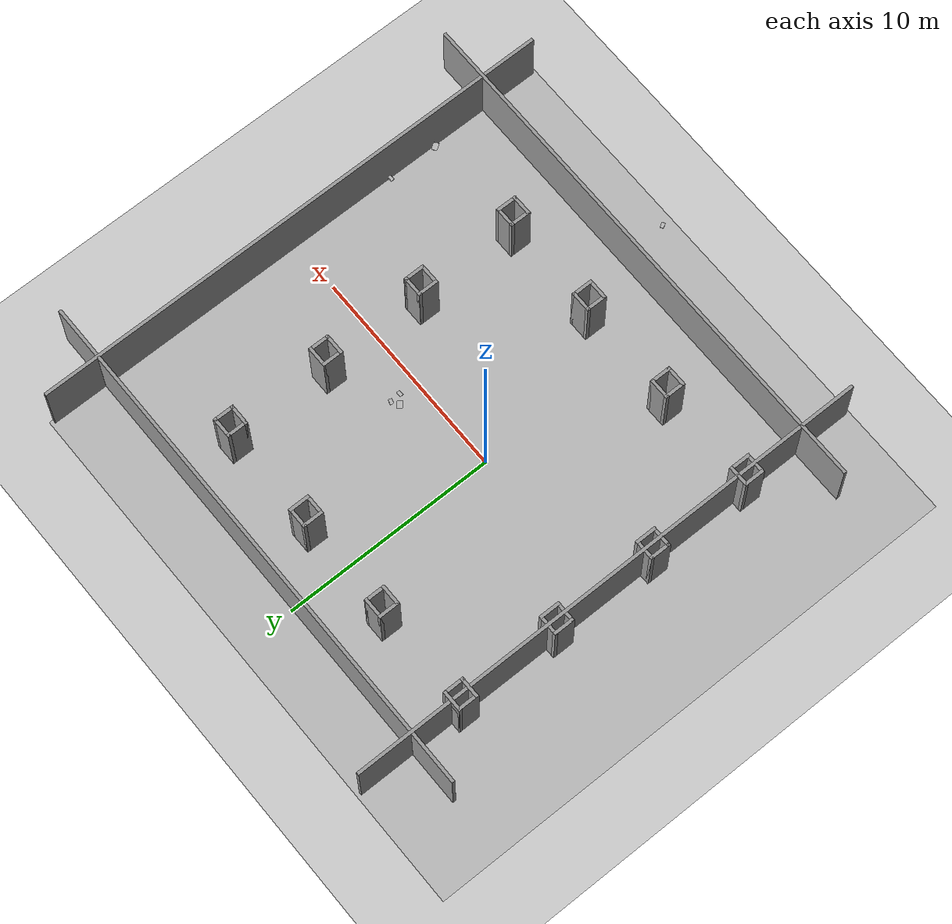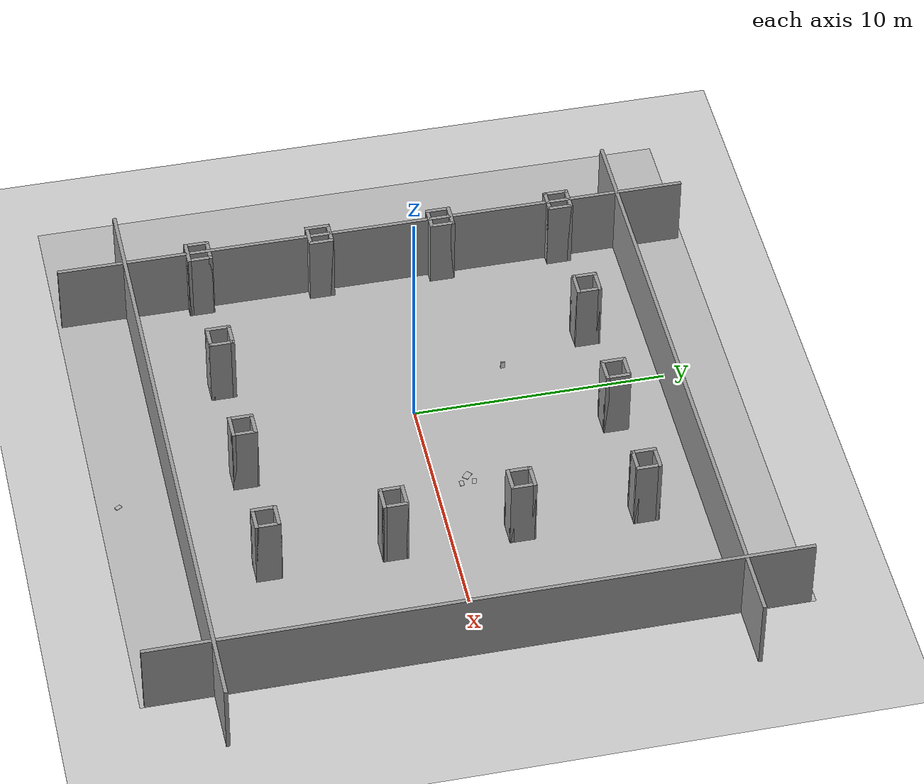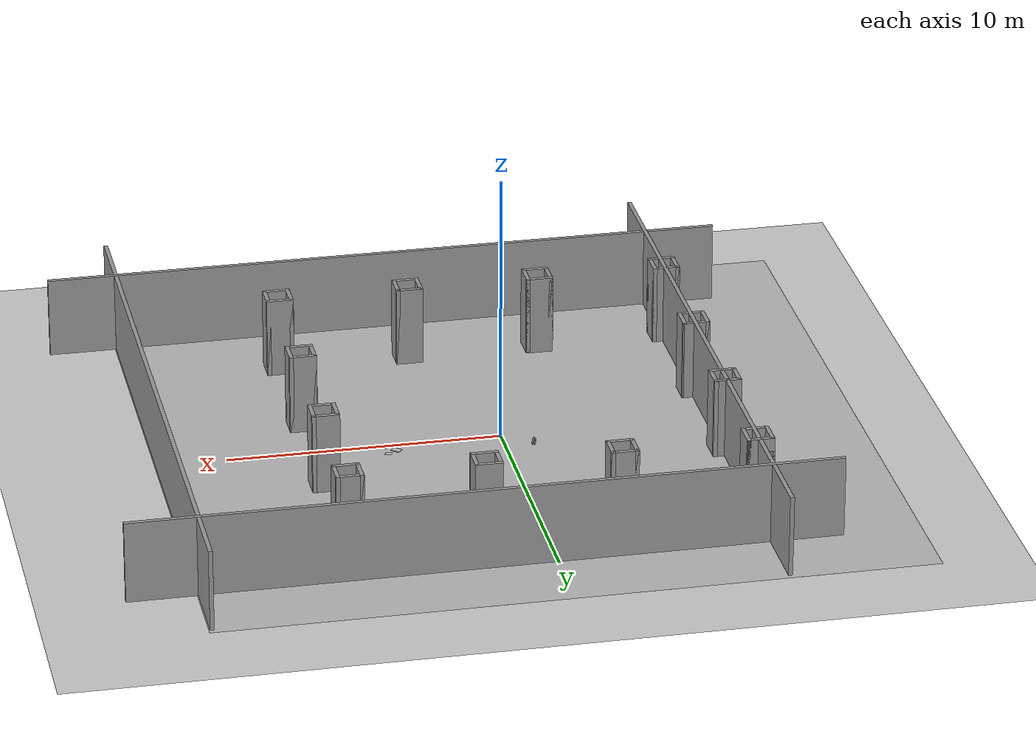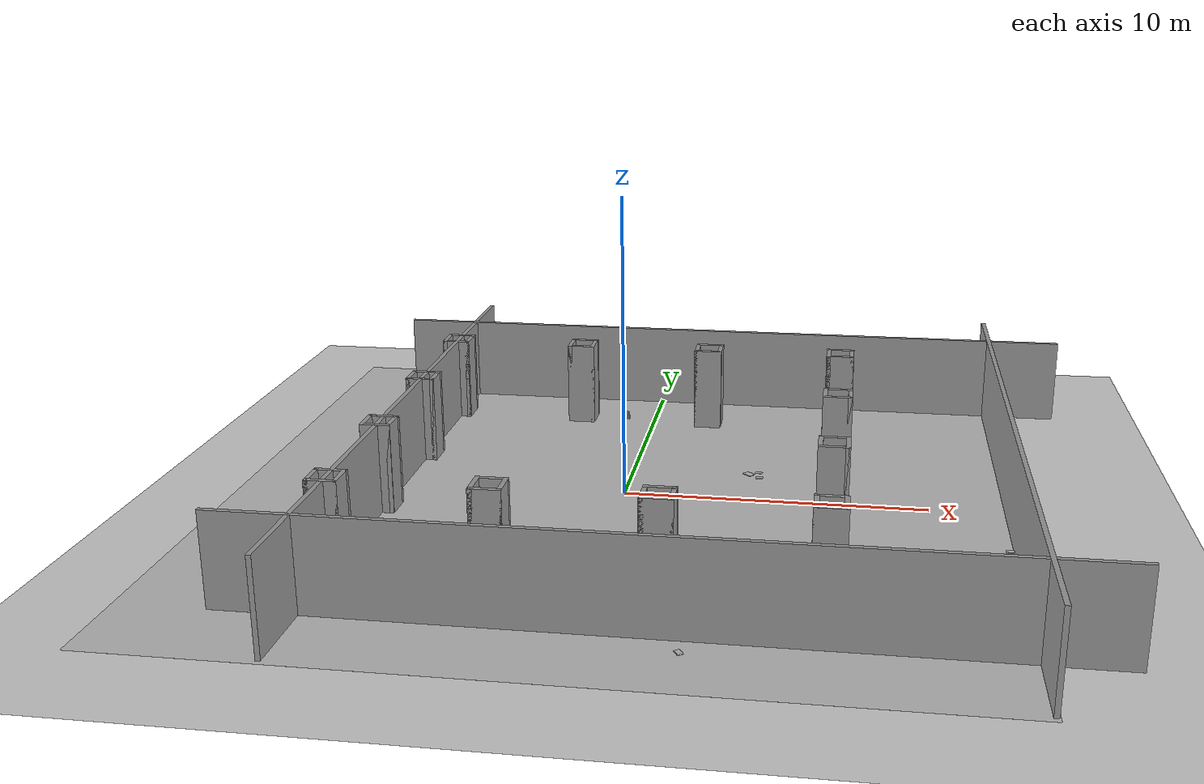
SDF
<sdf version="1.6">
 <world name="default">
  <model name="ground_plane">
   <static>1</static>
   <link name="link">
    <collision name="collision">
     <geometry><plane><normal>0 0 1</normal><size>100 100</size></plane></geometry>
     <surface><friction><ode><mu>1</mu><mu2>1</mu2></ode></friction></surface>
    </collision>
    <visual name="visual">
     <cast_shadows>0</cast_shadows>
     <geometry><plane><normal>0 0 1</normal><size>100 100</size></plane></geometry>
     <material>
      <script><uri>file://media/materials/scripts/gazebo.material</uri><name>Gazebo/Grey</name></script>
     </material>
    </visual>
    <velocity_decay><linear>0</linear><angular>0</angular></velocity_decay>
   </link>
  </model>
  <model name="book_14">
   <link name="cover">
    <pose>0 -0.000108 0.015405 0 -0 0</pose>
    <visual name="visual">
     <geometry><box><size>0.245 0.16 0.03</size></box></geometry>
     <material>
      <script>
       <uri>model://book_14/materials/scripts</uri>
       <uri>model://book_14/materials/textures</uri>
       <name>book_14</name>
      </script>
     </material>
    </visual>
    <collision name="collision"><geometry><box><size>0.245 0.16 0.03</size></box></geometry></collision>
   </link>
   <link name="page">
    <pose>0 0.000608 0.015405 0 -0 0</pose>
    <visual name="visual">
     <geometry><box><size>0.24502 0.15862 0.028</size></box></geometry>
     <material>
      <lighting>1</lighting>
      <ambient>1 1 1 1</ambient>
      <diffuse>1 1 1 1</diffuse>
      <specular>0.01 0.01 0.01 1</specular>
      <emissive>0 0 0 1</emissive>
      <shader type="vertex"><normal_map>__default__</normal_map></shader>
     </material>
    </visual>
    <collision name="collision"><geometry><box><size>0.245 0.16 0.03</size></box></geometry></collision>
   </link>
   <static>1</static>
   <pose>-0.397337 3.60071 1.53368 -3.08906 1.34097 0.077504</pose>
  </model>
  <model name="book_16">
   <link name="cover">
    <pose>0 -0.000108 0.015405 0 -0 0</pose>
    <visual name="visual">
     <geometry><box><size>0.245 0.16 0.03</size></box></geometry>
     <material>
      <script>
       <uri>model://book_16/materials/scripts</uri>
       <uri>model://book_16/materials/textures</uri>
       <name>book_16</name>
      </script>
     </material>
    </visual>
    <collision name="collision"><geometry><box><size>0.245 0.16 0.03</size></box></geometry></collision>
   </link>
   <link name="page">
    <pose>0 0.000608 0.015405 0 -0 0</pose>
    <visual name="visual">
     <geometry><box><size>0.24502 0.15862 0.028</size></box></geometry>
     <material>
      <lighting>1</lighting>
      <ambient>1 1 1 1</ambient>
      <diffuse>1 1 1 1</diffuse>
      <specular>0.01 0.01 0.01 1</specular>
      <emissive>0 0 0 1</emissive>
      <shader type="vertex"><normal_map>__default__</normal_map></shader>
     </material>
    </visual>
    <collision name="collision"><geometry><box><size>0.245 0.16 0.03</size></box></geometry></collision>
   </link>
   <static>1</static>
   <pose>4.42601 0.923836 0.431684 0 0 -3.11812</pose>
  </model>
  <model name="book_18">
   <link name="cover">
    <pose>0 -0.000108 0.015405 0 -0 0</pose>
    <visual name="visual">
     <geometry><box><size>0.245 0.16 0.03</size></box></geometry>
     <material>
      <script>
       <uri>model://book_18/materials/scripts</uri>
       <uri>model://book_18/materials/textures</uri>
       <name>book_18</name>
      </script>
     </material>
    </visual>
    <collision name="collision"><geometry><box><size>0.245 0.16 0.03</size></box></geometry></collision>
   </link>
   <link name="page">
    <pose>0 0.000608 0.015405 0 -0 0</pose>
    <visual name="visual">
     <geometry><box><size>0.24502 0.15862 0.028</size></box></geometry>
     <material>
      <lighting>1</lighting>
      <ambient>1 1 1 1</ambient>
      <diffuse>1 1 1 1</diffuse>
      <specular>0.01 0.01 0.01 1</specular>
      <emissive>0 0 0 1</emissive>
      <shader type="vertex"><normal_map>__default__</normal_map></shader>
     </material>
    </visual>
    <collision name="collision"><geometry><box><size>0.245 0.16 0.03</size></box></geometry></collision>
   </link>
   <static>1</static>
   <pose>-0.450242 3.60603 1.53141 1.91107 1.46152 -1.1576</pose>
  </model>
  <model name="book_8">
   <link name="cover">
    <pose>0 -0.000108 0.005 0 -0 0</pose>
    <visual name="visual">
     <geometry><box><size>0.245 0.16 0.01</size></box></geometry>
     <material>
      <script>
       <uri>model://book_8/materials/scripts</uri>
       <uri>model://book_8/materials/textures</uri>
       <name>book_8</name>
      </script>
     </material>
    </visual>
    <collision name="collision"><geometry><box><size>0.245 0.16 0.01</size></box></geometry></collision>
   </link>
   <link name="page">
    <pose>0 0.000608 0.005 0 -0 0</pose>
    <visual name="visual">
     <geometry><box><size>0.24502 0.15862 0.008</size></box></geometry>
     <material>
      <lighting>1</lighting>
      <ambient>1 1 1 1</ambient>
      <diffuse>1 1 1 1</diffuse>
      <specular>0.01 0.01 0.01 1</specular>
      <emissive>0 0 0 1</emissive>
      <shader type="vertex"><normal_map>__default__</normal_map></shader>
     </material>
    </visual>
    <collision name="collision"><geometry><box><size>0.245 0.16 0.008</size></box></geometry></collision>
   </link>
   <static>1</static>
   <pose>4.38842 1.42121 0.431029 0 -0 2.87142</pose>
  </model>
  <model name="newspaper_2">
   <link name="link_0">
    <visual name="visual">
     <geometry><box><size>0.35 0.25 0.02</size></box></geometry>
     <material>
      <script>
       <uri>model://newspaper_2/materials/scripts</uri>
       <uri>model://newspaper_2/materials/textures</uri>
       <name>newspaper_2</name>
      </script>
     </material>
    </visual>
    <collision name="collision"><geometry><box><size>0.35 0.25 0.02</size></box></geometry></collision>
   </link>
   <static>1</static>
   <pose>12.0855 -7.10849 0.77593 0 0 -0.934541</pose>
  </model>
  <model name="book_18_0">
   <link name="cover">
    <pose>0 -0.000108 0.015405 0 -0 0</pose>
    <visual name="visual">
     <geometry><box><size>0.245 0.16 0.03</size></box></geometry>
     <material>
      <script>
       <uri>model://book_18/materials/scripts</uri>
       <uri>model://book_18/materials/textures</uri>
       <name>book_18</name>
      </script>
     </material>
    </visual>
    <collision name="collision"><geometry><box><size>0.245 0.16 0.03</size></box></geometry></collision>
   </link>
   <link name="page">
    <pose>0 0.000608 0.015405 0 -0 0</pose>
    <visual name="visual">
     <geometry><box><size>0.24502 0.15862 0.028</size></box></geometry>
     <material>
      <lighting>1</lighting>
      <ambient>1 1 1 1</ambient>
      <diffuse>1 1 1 1</diffuse>
      <specular>0.01 0.01 0.01 1</specular>
      <emissive>0 0 0 1</emissive>
      <shader type="vertex"><normal_map>__default__</normal_map></shader>
     </material>
    </visual>
    <collision name="collision"><geometry><box><size>0.245 0.16 0.03</size></box></geometry></collision>
   </link>
   <static>1</static>
   <pose>3.29779 -12.1373 0.764084 0 0 -1.01851</pose>
  </model>
  <model name="book_14_1">
   <link name="cover">
    <pose>0 -0.000108 0.015405 0 -0 0</pose>
    <visual name="visual">
     <geometry><box><size>0.245 0.16 0.03</size></box></geometry>
     <material>
      <script>
       <uri>model://book_14/materials/scripts</uri>
       <uri>model://book_14/materials/textures</uri>
       <name>book_14</name>
      </script>
     </material>
    </visual>
    <collision name="collision"><geometry><box><size>0.245 0.16 0.03</size></box></geometry></collision>
   </link>
   <link name="page">
    <pose>0 0.000608 0.015405 0 -0 0</pose>
    <visual name="visual">
     <geometry><box><size>0.24502 0.15862 0.028</size></box></geometry>
     <material>
      <lighting>1</lighting>
      <ambient>1 1 1 1</ambient>
      <diffuse>1 1 1 1</diffuse>
      <specular>0.01 0.01 0.01 1</specular>
      <emissive>0 0 0 1</emissive>
      <shader type="vertex"><normal_map>__default__</normal_map></shader>
     </material>
    </visual>
    <collision name="collision"><geometry><box><size>0.245 0.16 0.03</size></box></geometry></collision>
   </link>
   <static>1</static>
   <pose>12.0975 -4.75392 0.763218 0 -0 0</pose>
  </model>
  <model name="newspaper_3">
   <link name="link_0">
    <visual name="visual">
     <geometry><box><size>0.35 0.25 0.02</size></box></geometry>
     <material>
      <script>
       <uri>model://newspaper_3/materials/scripts</uri>
       <uri>model://newspaper_3/materials/textures</uri>
       <name>newspaper_3</name>
      </script>
     </material>
    </visual>
    <collision name="collision"><geometry><box><size>0.35 0.25 0.02</size></box></geometry></collision>
   </link>
   <static>1</static>
   <pose>4.06341 1.21715 0.44562 0 0 -0.747151</pose>
  </model>
  <model name="Floor_room">
   <link name="main">
    <pose>0 0 0.01 0 -0 0</pose>
    <collision name="main_Collision">
     <geometry><box><size>25.5536 25.5536 0.000328</size></box></geometry>
    </collision>
    <visual name="main_Visual">
     <geometry><box><size>25.5536 25.5536 0.000328</size></box></geometry>
     <material>
      <script>
       <uri>model://Floor_room/materials/scripts</uri>
       <uri>model://Floor_room/materials/textures</uri>
       <name>floor_room</name>
      </script>
     </material>
    </visual>
   </link>
   <static>1</static>
   <pose>-0.165528 -0.09313 0.001198 0 -0 0</pose>
  </model>
  <model name="exterior_walls">
   <pose>2.466 -0.083501 0 0 -0 0</pose>
   <link name="Wall_32">
    <collision name="Wall_32_Collision">
     <geometry><box><size>25.2 0.15 3</size></box></geometry>
     <pose>0 0 1.5 0 -0 0</pose>
    </collision>
    <visual name="Wall_32_Visual">
     <pose>0 0 1.5 0 -0 0</pose>
     <geometry><box><size>25.2 0.15 3</size></box></geometry>
     <material>
      <script><uri>file://media/materials/scripts/gazebo.material</uri><name>Gazebo/Grey</name></script>
      <ambient>1 1 1 1</ambient>
     </material>
     <meta><layer>0</layer></meta>
    </visual>
    <pose>10.034 -0.018499 0 0 -0 1.5708</pose>
   </link>
   <link name="Wall_34">
    <collision name="Wall_34_Collision">
     <geometry><box><size>25.2 0.15 3</size></box></geometry>
     <pose>0 0 1.5 0 -0 0</pose>
    </collision>
    <visual name="Wall_34_Visual">
     <pose>0 0 1.5 0 -0 0</pose>
     <geometry><box><size>25.2 0.15 3</size></box></geometry>
     <material>
      <script><uri>file://media/materials/scripts/gazebo.material</uri><name>Gazebo/Grey</name></script>
      <ambient>1 1 1 1</ambient>
     </material>
     <meta><layer>0</layer></meta>
    </visual>
    <pose>-10.037 -0.014499 0 0 -0 1.5708</pose>
   </link>
   <link name="Wall_36">
    <collision name="Wall_36_Collision">
     <geometry><box><size>25.2 0.15 3</size></box></geometry>
     <pose>0 0 1.5 0 -0 0</pose>
    </collision>
    <visual name="Wall_36_Visual">
     <pose>0 0 1.5 0 -0 0</pose>
     <geometry><box><size>25.2 0.15 3</size></box></geometry>
     <material>
      <script><uri>file://media/materials/scripts/gazebo.material</uri><name>Gazebo/Grey</name></script>
      <ambient>1 1 1 1</ambient>
     </material>
     <meta><layer>0</layer></meta>
    </visual>
    <pose>-0 9.9435 0 0 -0 0</pose>
   </link>
   <link name="Wall_4">
    <collision name="Wall_4_Collision">
     <geometry><box><size>25.2 0.15 3</size></box></geometry>
     <pose>0 0 1.5 0 -0 0</pose>
    </collision>
    <visual name="Wall_4_Visual">
     <pose>0 0 1.5 0 -0 0</pose>
     <geometry><box><size>25.2 0.15 3</size></box></geometry>
     <material>
      <script><uri>file://media/materials/scripts/gazebo.material</uri><name>Gazebo/Grey</name></script>
      <ambient>1 1 1 1</ambient>
     </material>
     <meta><layer>0</layer></meta>
    </visual>
    <pose>-0.031 -9.9435 0 0 -0 0</pose>
   </link>
   <static>1</static>
  </model>
  <model name="pillar_walls">
   <pose>-0.33802 0.1855 0 0 -0 0</pose>
   <link name="Wall_101">
    <collision name="Wall_101_Collision">
     <geometry><box><size>1 0.15 3</size></box></geometry>
     <pose>0 0 1.5 0 -0 0</pose>
    </collision>
    <visual name="Wall_101_Visual">
     <pose>0 0 1.5 0 -0 0</pose>
     <geometry><box><size>1 0.15 3</size></box></geometry>
     <material>
      <script><uri>file://media/materials/scripts/gazebo.material</uri><name>Gazebo/Grey</name></script>
      <ambient>1 1 1 1</ambient>
     </material>
     <meta><layer>0</layer></meta>
    </visual>
    <pose>6.83802 2.4525 0 0 -0 -1.5708</pose>
   </link>
   <link name="Wall_102">
    <collision name="Wall_102_Collision">
     <geometry><box><size>1 0.15 3</size></box></geometry>
     <pose>0 0 1.5 0 -0 0</pose>
    </collision>
    <visual name="Wall_102_Visual">
     <pose>0 0 1.5 0 -0 0</pose>
     <geometry><box><size>1 0.15 3</size></box></geometry>
     <material>
      <script><uri>file://media/materials/scripts/gazebo.material</uri><name>Gazebo/Grey</name></script>
      <ambient>1 1 1 1</ambient>
     </material>
     <meta><layer>0</layer></meta>
    </visual>
    <pose>7.26302 2.0275 0 0 -0 0</pose>
   </link>
   <link name="Wall_103">
    <collision name="Wall_103_Collision">
     <geometry><box><size>1 0.15 3</size></box></geometry>
     <pose>0 0 1.5 0 -0 0</pose>
    </collision>
    <visual name="Wall_103_Visual">
     <pose>0 0 1.5 0 -0 0</pose>
     <geometry><box><size>1 0.15 3</size></box></geometry>
     <material>
      <script><uri>file://media/materials/scripts/gazebo.material</uri><name>Gazebo/Grey</name></script>
      <ambient>1 1 1 1</ambient>
     </material>
     <meta><layer>0</layer></meta>
    </visual>
    <pose>7.68802 2.4525 0 0 -0 1.5708</pose>
   </link>
   <link name="Wall_107">
    <collision name="Wall_107_Collision">
     <geometry><box><size>1 0.15 3</size></box></geometry>
     <pose>0 0 1.5 0 -0 0</pose>
    </collision>
    <visual name="Wall_107_Visual">
     <pose>0 0 1.5 0 -0 0</pose>
     <geometry><box><size>1 0.15 3</size></box></geometry>
     <material>
      <script><uri>file://media/materials/scripts/gazebo.material</uri><name>Gazebo/Grey</name></script>
      <ambient>1 1 1 1</ambient>
     </material>
     <meta><layer>0</layer></meta>
    </visual>
    <pose>-7.68398 -2.4265 0 0 -0 -1.5708</pose>
   </link>
   <link name="Wall_125">
    <collision name="Wall_125_Collision">
     <geometry><box><size>1 0.15 3</size></box></geometry>
     <pose>0 0 1.5 0 -0 0</pose>
    </collision>
    <visual name="Wall_125_Visual">
     <pose>0 0 1.5 0 -0 0</pose>
     <geometry><box><size>1 0.15 3</size></box></geometry>
     <material>
      <script><uri>file://media/materials/scripts/gazebo.material</uri><name>Gazebo/Grey</name></script>
      <ambient>1 1 1 1</ambient>
     </material>
     <meta><layer>0</layer></meta>
    </visual>
    <pose>6.81502 -2.4265 0 0 -0 -1.5708</pose>
   </link>
   <link name="Wall_126">
    <collision name="Wall_126_Collision">
     <geometry><box><size>1 0.15 3</size></box></geometry>
     <pose>0 0 1.5 0 -0 0</pose>
    </collision>
    <visual name="Wall_126_Visual">
     <pose>0 0 1.5 0 -0 0</pose>
     <geometry><box><size>1 0.15 3</size></box></geometry>
     <material>
      <script><uri>file://media/materials/scripts/gazebo.material</uri><name>Gazebo/Grey</name></script>
      <ambient>1 1 1 1</ambient>
     </material>
     <meta><layer>0</layer></meta>
    </visual>
    <pose>7.24002 -2.8515 0 0 -0 0</pose>
   </link>
   <link name="Wall_127">
    <collision name="Wall_127_Collision">
     <geometry><box><size>1 0.15 3</size></box></geometry>
     <pose>0 0 1.5 0 -0 0</pose>
    </collision>
    <visual name="Wall_127_Visual">
     <pose>0 0 1.5 0 -0 0</pose>
     <geometry><box><size>1 0.15 3</size></box></geometry>
     <material>
      <script><uri>file://media/materials/scripts/gazebo.material</uri><name>Gazebo/Grey</name></script>
      <ambient>1 1 1 1</ambient>
     </material>
     <meta><layer>0</layer></meta>
    </visual>
    <pose>7.66502 -2.4265 0 0 -0 1.5708</pose>
   </link>
   <link name="Wall_131">
    <collision name="Wall_131_Collision">
     <geometry><box><size>1 0.15 3</size></box></geometry>
     <pose>0 0 1.5 0 -0 0</pose>
    </collision>
    <visual name="Wall_131_Visual">
     <pose>0 0 1.5 0 -0 0</pose>
     <geometry><box><size>1 0.15 3</size></box></geometry>
     <material>
      <script><uri>file://media/materials/scripts/gazebo.material</uri><name>Gazebo/Grey</name></script>
      <ambient>1 1 1 1</ambient>
     </material>
     <meta><layer>0</layer></meta>
    </visual>
    <pose>-7.69298 -7.2895 0 0 -0 -1.5708</pose>
   </link>
   <link name="Wall_132">
    <collision name="Wall_132_Collision">
     <geometry><box><size>1 0.15 3</size></box></geometry>
     <pose>0 0 1.5 0 -0 0</pose>
    </collision>
    <visual name="Wall_132_Visual">
     <pose>0 0 1.5 0 -0 0</pose>
     <geometry><box><size>1 0.15 3</size></box></geometry>
     <material>
      <script><uri>file://media/materials/scripts/gazebo.material</uri><name>Gazebo/Grey</name></script>
      <ambient>1 1 1 1</ambient>
     </material>
     <meta><layer>0</layer></meta>
    </visual>
    <pose>-7.26798 -7.7145 0 0 -0 0</pose>
   </link>
   <link name="Wall_133">
    <collision name="Wall_133_Collision">
     <geometry><box><size>1 0.15 3</size></box></geometry>
     <pose>0 0 1.5 0 -0 0</pose>
    </collision>
    <visual name="Wall_133_Visual">
     <pose>0 0 1.5 0 -0 0</pose>
     <geometry><box><size>1 0.15 3</size></box></geometry>
     <material>
      <script><uri>file://media/materials/scripts/gazebo.material</uri><name>Gazebo/Grey</name></script>
      <ambient>1 1 1 1</ambient>
     </material>
     <meta><layer>0</layer></meta>
    </visual>
    <pose>-6.84298 -7.2895 0 0 -0 1.5708</pose>
   </link>
   <link name="Wall_137">
    <collision name="Wall_137_Collision">
     <geometry><box><size>1 0.15 3</size></box></geometry>
     <pose>0 0 1.5 0 -0 0</pose>
    </collision>
    <visual name="Wall_137_Visual">
     <pose>0 0 1.5 0 -0 0</pose>
     <geometry><box><size>1 0.15 3</size></box></geometry>
     <material>
      <script><uri>file://media/materials/scripts/gazebo.material</uri><name>Gazebo/Grey</name></script>
      <ambient>1 1 1 1</ambient>
     </material>
     <meta><layer>0</layer></meta>
    </visual>
    <pose>-2.88098 -7.2705 0 0 -0 -1.5708</pose>
   </link>
   <link name="Wall_138">
    <collision name="Wall_138_Collision">
     <geometry><box><size>1 0.15 3</size></box></geometry>
     <pose>0 0 1.5 0 -0 0</pose>
    </collision>
    <visual name="Wall_138_Visual">
     <pose>0 0 1.5 0 -0 0</pose>
     <geometry><box><size>1 0.15 3</size></box></geometry>
     <material>
      <script><uri>file://media/materials/scripts/gazebo.material</uri><name>Gazebo/Grey</name></script>
      <ambient>1 1 1 1</ambient>
     </material>
     <meta><layer>0</layer></meta>
    </visual>
    <pose>-2.45598 -7.6955 0 0 -0 0</pose>
   </link>
   <link name="Wall_139">
    <collision name="Wall_139_Collision">
     <geometry><box><size>1 0.15 3</size></box></geometry>
     <pose>0 0 1.5 0 -0 0</pose>
    </collision>
    <visual name="Wall_139_Visual">
     <pose>0 0 1.5 0 -0 0</pose>
     <geometry><box><size>1 0.15 3</size></box></geometry>
     <material>
      <script><uri>file://media/materials/scripts/gazebo.material</uri><name>Gazebo/Grey</name></script>
      <ambient>1 1 1 1</ambient>
     </material>
     <meta><layer>0</layer></meta>
    </visual>
    <pose>-2.03098 -7.2705 0 0 -0 1.5708</pose>
   </link>
   <link name="Wall_143">
    <collision name="Wall_143_Collision">
     <geometry><box><size>1 0.15 3</size></box></geometry>
     <pose>0 0 1.5 0 -0 0</pose>
    </collision>
    <visual name="Wall_143_Visual">
     <pose>0 0 1.5 0 -0 0</pose>
     <geometry><box><size>1 0.15 3</size></box></geometry>
     <material>
      <script><uri>file://media/materials/scripts/gazebo.material</uri><name>Gazebo/Grey</name></script>
      <ambient>1 1 1 1</ambient>
     </material>
     <meta><layer>0</layer></meta>
    </visual>
    <pose>2.00602 -7.2705 0 0 -0 -1.5708</pose>
   </link>
   <link name="Wall_144">
    <collision name="Wall_144_Collision">
     <geometry><box><size>1 0.15 3</size></box></geometry>
     <pose>0 0 1.5 0 -0 0</pose>
    </collision>
    <visual name="Wall_144_Visual">
     <pose>0 0 1.5 0 -0 0</pose>
     <geometry><box><size>1 0.15 3</size></box></geometry>
     <material>
      <script><uri>file://media/materials/scripts/gazebo.material</uri><name>Gazebo/Grey</name></script>
      <ambient>1 1 1 1</ambient>
     </material>
     <meta><layer>0</layer></meta>
    </visual>
    <pose>2.43102 -7.6955 0 0 -0 0</pose>
   </link>
   <link name="Wall_145">
    <collision name="Wall_145_Collision">
     <geometry><box><size>1 0.15 3</size></box></geometry>
     <pose>0 0 1.5 0 -0 0</pose>
    </collision>
    <visual name="Wall_145_Visual">
     <pose>0 0 1.5 0 -0 0</pose>
     <geometry><box><size>1 0.15 3</size></box></geometry>
     <material>
      <script><uri>file://media/materials/scripts/gazebo.material</uri><name>Gazebo/Grey</name></script>
      <ambient>1 1 1 1</ambient>
     </material>
     <meta><layer>0</layer></meta>
    </visual>
    <pose>2.85602 -7.2705 0 0 -0 1.5708</pose>
   </link>
   <link name="Wall_149">
    <collision name="Wall_149_Collision">
     <geometry><box><size>1 0.15 3</size></box></geometry>
     <pose>0 0 1.5 0 -0 0</pose>
    </collision>
    <visual name="Wall_149_Visual">
     <pose>0 0 1.5 0 -0 0</pose>
     <geometry><box><size>1 0.15 3</size></box></geometry>
     <material>
      <script><uri>file://media/materials/scripts/gazebo.material</uri><name>Gazebo/Grey</name></script>
      <ambient>1 1 1 1</ambient>
     </material>
     <meta><layer>0</layer></meta>
    </visual>
    <pose>6.83702 -7.2705 0 0 -0 -1.5708</pose>
   </link>
   <link name="Wall_150">
    <collision name="Wall_150_Collision">
     <geometry><box><size>1 0.15 3</size></box></geometry>
     <pose>0 0 1.5 0 -0 0</pose>
    </collision>
    <visual name="Wall_150_Visual">
     <pose>0 0 1.5 0 -0 0</pose>
     <geometry><box><size>1 0.15 3</size></box></geometry>
     <material>
      <script><uri>file://media/materials/scripts/gazebo.material</uri><name>Gazebo/Grey</name></script>
      <ambient>1 1 1 1</ambient>
     </material>
     <meta><layer>0</layer></meta>
    </visual>
    <pose>7.26202 -7.6955 0 0 -0 0</pose>
   </link>
   <link name="Wall_151">
    <collision name="Wall_151_Collision">
     <geometry><box><size>1 0.15 3</size></box></geometry>
     <pose>0 0 1.5 0 -0 0</pose>
    </collision>
    <visual name="Wall_151_Visual">
     <pose>0 0 1.5 0 -0 0</pose>
     <geometry><box><size>1 0.15 3</size></box></geometry>
     <material>
      <script><uri>file://media/materials/scripts/gazebo.material</uri><name>Gazebo/Grey</name></script>
      <ambient>1 1 1 1</ambient>
     </material>
     <meta><layer>0</layer></meta>
    </visual>
    <pose>7.68702 -7.2705 0 0 -0 1.5708</pose>
   </link>
   <link name="Wall_153">
    <collision name="Wall_153_Collision">
     <geometry><box><size>1 0.15 3</size></box></geometry>
     <pose>0 0 1.5 0 -0 0</pose>
    </collision>
    <visual name="Wall_153_Visual">
     <pose>0 0 1.5 0 -0 0</pose>
     <geometry><box><size>1 0.15 3</size></box></geometry>
     <material>
      <script><uri>file://media/materials/scripts/gazebo.material</uri><name>Gazebo/Grey</name></script>
      <ambient>1 1 1 1</ambient>
     </material>
     <meta><layer>0</layer></meta>
    </visual>
    <pose>-2.42698 7.7145 0 0 -0 0</pose>
   </link>
   <link name="Wall_158">
    <collision name="Wall_158_Collision">
     <geometry><box><size>1 0.15 3</size></box></geometry>
     <pose>0 0 1.5 0 -0 0</pose>
    </collision>
    <visual name="Wall_158_Visual">
     <pose>0 0 1.5 0 -0 0</pose>
     <geometry><box><size>1 0.15 3</size></box></geometry>
     <material>
      <script><uri>file://media/materials/scripts/gazebo.material</uri><name>Gazebo/Grey</name></script>
      <ambient>1 1 1 1</ambient>
     </material>
     <meta><layer>0</layer></meta>
    </visual>
    <pose>7.26802 7.6925 0 0 -0 3.14159</pose>
   </link>
   <link name="Wall_159">
    <collision name="Wall_159_Collision">
     <geometry><box><size>1 0.15 3</size></box></geometry>
     <pose>0 0 1.5 0 -0 0</pose>
    </collision>
    <visual name="Wall_159_Visual">
     <pose>0 0 1.5 0 -0 0</pose>
     <geometry><box><size>1 0.15 3</size></box></geometry>
     <material>
      <script><uri>file://media/materials/scripts/gazebo.material</uri><name>Gazebo/Grey</name></script>
      <ambient>1 1 1 1</ambient>
     </material>
     <meta><layer>0</layer></meta>
    </visual>
    <pose>6.84302 7.2675 0 0 -0 -1.5708</pose>
   </link>
   <link name="Wall_161">
    <collision name="Wall_161_Collision">
     <geometry><box><size>1 0.15 3</size></box></geometry>
     <pose>0 0 1.5 0 -0 0</pose>
    </collision>
    <visual name="Wall_161_Visual">
     <pose>0 0 1.5 0 -0 0</pose>
     <geometry><box><size>1 0.15 3</size></box></geometry>
     <material>
      <script><uri>file://media/materials/scripts/gazebo.material</uri><name>Gazebo/Grey</name></script>
      <ambient>1 1 1 1</ambient>
     </material>
     <meta><layer>0</layer></meta>
    </visual>
    <pose>-7.25198 2.8855 0 0 -0 0</pose>
   </link>
   <link name="Wall_167">
    <collision name="Wall_167_Collision">
     <geometry><box><size>1 0.15 3</size></box></geometry>
     <pose>0 0 1.5 0 -0 0</pose>
    </collision>
    <visual name="Wall_167_Visual">
     <pose>0 0 1.5 0 -0 0</pose>
     <geometry><box><size>1 0.15 3</size></box></geometry>
     <material>
      <script><uri>file://media/materials/scripts/gazebo.material</uri><name>Gazebo/Grey</name></script>
      <ambient>1 1 1 1</ambient>
     </material>
     <meta><layer>0</layer></meta>
    </visual>
    <pose>7.26302 2.8775 0 0 -0 0</pose>
   </link>
   <link name="Wall_177">
    <collision name="Wall_177_Collision">
     <geometry><box><size>1 0.15 3</size></box></geometry>
     <pose>0 0 1.5 0 -0 0</pose>
    </collision>
    <visual name="Wall_177_Visual">
     <pose>0 0 1.5 0 -0 0</pose>
     <geometry><box><size>1 0.15 3</size></box></geometry>
     <material>
      <script><uri>file://media/materials/scripts/gazebo.material</uri><name>Gazebo/Grey</name></script>
      <ambient>1 1 1 1</ambient>
     </material>
     <meta><layer>0</layer></meta>
    </visual>
    <pose>7.24002 -2.0015 0 0 -0 0</pose>
   </link>
   <link name="Wall_179">
    <collision name="Wall_179_Collision">
     <geometry><box><size>1 0.15 3</size></box></geometry>
     <pose>0 0 1.5 0 -0 0</pose>
    </collision>
    <visual name="Wall_179_Visual">
     <pose>0 0 1.5 0 -0 0</pose>
     <geometry><box><size>1 0.15 3</size></box></geometry>
     <material>
      <script><uri>file://media/materials/scripts/gazebo.material</uri><name>Gazebo/Grey</name></script>
      <ambient>1 1 1 1</ambient>
     </material>
     <meta><layer>0</layer></meta>
    </visual>
    <pose>7.26202 -6.8455 0 0 -0 0</pose>
   </link>
   <link name="Wall_181">
    <collision name="Wall_181_Collision">
     <geometry><box><size>1 0.15 3</size></box></geometry>
     <pose>0 0 1.5 0 -0 0</pose>
    </collision>
    <visual name="Wall_181_Visual">
     <pose>0 0 1.5 0 -0 0</pose>
     <geometry><box><size>1 0.15 3</size></box></geometry>
     <material>
      <script><uri>file://media/materials/scripts/gazebo.material</uri><name>Gazebo/Grey</name></script>
      <ambient>1 1 1 1</ambient>
     </material>
     <meta><layer>0</layer></meta>
    </visual>
    <pose>2.43102 -6.8455 0 0 -0 0</pose>
   </link>
   <link name="Wall_183">
    <collision name="Wall_183_Collision">
     <geometry><box><size>1 0.15 3</size></box></geometry>
     <pose>0 0 1.5 0 -0 0</pose>
    </collision>
    <visual name="Wall_183_Visual">
     <pose>0 0 1.5 0 -0 0</pose>
     <geometry><box><size>1 0.15 3</size></box></geometry>
     <material>
      <script><uri>file://media/materials/scripts/gazebo.material</uri><name>Gazebo/Grey</name></script>
      <ambient>1 1 1 1</ambient>
     </material>
     <meta><layer>0</layer></meta>
    </visual>
    <pose>-2.45598 -6.8455 0 0 -0 0</pose>
   </link>
   <link name="Wall_185">
    <collision name="Wall_185_Collision">
     <geometry><box><size>1 0.15 3</size></box></geometry>
     <pose>0 0 1.5 0 -0 0</pose>
    </collision>
    <visual name="Wall_185_Visual">
     <pose>0 0 1.5 0 -0 0</pose>
     <geometry><box><size>1 0.15 3</size></box></geometry>
     <material>
      <script><uri>file://media/materials/scripts/gazebo.material</uri><name>Gazebo/Grey</name></script>
      <ambient>1 1 1 1</ambient>
     </material>
     <meta><layer>0</layer></meta>
    </visual>
    <pose>-7.26798 -6.8645 0 0 -0 0</pose>
   </link>
   <link name="Wall_187">
    <collision name="Wall_187_Collision">
     <geometry><box><size>1 0.15 3</size></box></geometry>
     <pose>0 0 1.5 0 -0 0</pose>
    </collision>
    <visual name="Wall_187_Visual">
     <pose>0 0 1.5 0 -0 0</pose>
     <geometry><box><size>1 0.15 3</size></box></geometry>
     <material>
      <script><uri>file://media/materials/scripts/gazebo.material</uri><name>Gazebo/Grey</name></script>
      <ambient>1 1 1 1</ambient>
     </material>
     <meta><layer>0</layer></meta>
    </visual>
    <pose>-7.25898 -2.8515 0 0 -0 0</pose>
   </link>
   <link name="Wall_188">
    <collision name="Wall_188_Collision">
     <geometry><box><size>1 0.15 3</size></box></geometry>
     <pose>0 0 1.5 0 -0 0</pose>
    </collision>
    <visual name="Wall_188_Visual">
     <pose>0 0 1.5 0 -0 0</pose>
     <geometry><box><size>1 0.15 3</size></box></geometry>
     <material>
      <script><uri>file://media/materials/scripts/gazebo.material</uri><name>Gazebo/Grey</name></script>
      <ambient>1 1 1 1</ambient>
     </material>
     <meta><layer>0</layer></meta>
    </visual>
    <pose>-6.83398 -2.4265 0 0 -0 1.5708</pose>
   </link>
   <link name="Wall_189">
    <collision name="Wall_189_Collision">
     <geometry><box><size>1 0.15 3</size></box></geometry>
     <pose>0 0 1.5 0 -0 0</pose>
    </collision>
    <visual name="Wall_189_Visual">
     <pose>0 0 1.5 0 -0 0</pose>
     <geometry><box><size>1 0.15 3</size></box></geometry>
     <material>
      <script><uri>file://media/materials/scripts/gazebo.material</uri><name>Gazebo/Grey</name></script>
      <ambient>1 1 1 1</ambient>
     </material>
     <meta><layer>0</layer></meta>
    </visual>
    <pose>-7.25898 -2.0015 0 0 -0 3.14159</pose>
   </link>
   <link name="Wall_194">
    <collision name="Wall_194_Collision">
     <geometry><box><size>1 0.15 3</size></box></geometry>
     <pose>0 0 1.5 0 -0 0</pose>
    </collision>
    <visual name="Wall_194_Visual">
     <pose>0 0 1.5 0 -0 0</pose>
     <geometry><box><size>1 0.15 3</size></box></geometry>
     <material>
      <script><uri>file://media/materials/scripts/gazebo.material</uri><name>Gazebo/Grey</name></script>
      <ambient>1 1 1 1</ambient>
     </material>
     <meta><layer>0</layer></meta>
    </visual>
    <pose>2.38302 7.7035 0 0 -0 0</pose>
   </link>
   <link name="Wall_195">
    <collision name="Wall_195_Collision">
     <geometry><box><size>1 0.15 3</size></box></geometry>
     <pose>0 0 1.5 0 -0 0</pose>
    </collision>
    <visual name="Wall_195_Visual">
     <pose>0 0 1.5 0 -0 0</pose>
     <geometry><box><size>1 0.15 3</size></box></geometry>
     <material>
      <script><uri>file://media/materials/scripts/gazebo.material</uri><name>Gazebo/Grey</name></script>
      <ambient>1 1 1 1</ambient>
     </material>
     <meta><layer>0</layer></meta>
    </visual>
    <pose>2.80802 7.2785 0 0 -0 -1.5708</pose>
   </link>
   <link name="Wall_196">
    <collision name="Wall_196_Collision">
     <geometry><box><size>1 0.15 3</size></box></geometry>
     <pose>0 0 1.5 0 -0 0</pose>
    </collision>
    <visual name="Wall_196_Visual">
     <pose>0 0 1.5 0 -0 0</pose>
     <geometry><box><size>1 0.15 3</size></box></geometry>
     <material>
      <script><uri>file://media/materials/scripts/gazebo.material</uri><name>Gazebo/Grey</name></script>
      <ambient>1 1 1 1</ambient>
     </material>
     <meta><layer>0</layer></meta>
    </visual>
    <pose>2.38302 6.8535 0 0 -0 3.14159</pose>
   </link>
   <link name="Wall_51">
    <collision name="Wall_51_Collision">
     <geometry><box><size>0.5 0.15 2.5</size></box></geometry>
     <pose>0 0 1.25 0 -0 0</pose>
    </collision>
    <visual name="Wall_51_Visual">
     <pose>0 0 1.25 0 -0 0</pose>
     <geometry><box><size>0.5 0.15 2.5</size></box></geometry>
     <material>
      <script><uri>file://media/materials/scripts/gazebo.material</uri><name>Gazebo/Grey</name></script>
      <ambient>1 1 1 1</ambient>
     </material>
     <meta><layer>0</layer></meta>
    </visual>
    <pose>-7.51793 7.6927 0 0 -0 -3.14046</pose>
   </link>
   <link name="Wall_52">
    <collision name="Wall_52_Collision">
     <geometry><box><size>1 0.15 3</size></box></geometry>
     <pose>0 0 1.5 0 -0 0</pose>
    </collision>
    <visual name="Wall_52_Visual">
     <pose>0 0 1.5 0 -0 0</pose>
     <geometry><box><size>1 0.15 3</size></box></geometry>
     <material>
      <script><uri>file://media/materials/scripts/gazebo.material</uri><name>Gazebo/Grey</name></script>
      <ambient>1 1 1 1</ambient>
     </material>
     <meta><layer>0</layer></meta>
    </visual>
    <pose>-7.69298 7.2675 0 0 -0 -1.5708</pose>
   </link>
   <link name="Wall_53">
    <collision name="Wall_53_Collision">
     <geometry><box><size>1 0.15 3</size></box></geometry>
     <pose>0 0 1.5 0 -0 0</pose>
    </collision>
    <visual name="Wall_53_Visual">
     <pose>0 0 1.5 0 -0 0</pose>
     <geometry><box><size>1 0.15 3</size></box></geometry>
     <material>
      <script><uri>file://media/materials/scripts/gazebo.material</uri><name>Gazebo/Grey</name></script>
      <ambient>1 1 1 1</ambient>
     </material>
     <meta><layer>0</layer></meta>
    </visual>
    <pose>-7.26798 6.8425 0 0 -0 0</pose>
   </link>
   <link name="Wall_54">
    <collision name="Wall_54_Collision">
     <geometry><box><size>1 0.15 3</size></box></geometry>
     <pose>0 0 1.5 0 -0 0</pose>
    </collision>
    <visual name="Wall_54_Visual">
     <pose>0 0 1.5 0 -0 0</pose>
     <geometry><box><size>1 0.15 3</size></box></geometry>
     <material>
      <script><uri>file://media/materials/scripts/gazebo.material</uri><name>Gazebo/Grey</name></script>
      <ambient>1 1 1 1</ambient>
     </material>
     <meta><layer>0</layer></meta>
    </visual>
    <pose>-6.84298 7.2675 0 0 -0 1.5708</pose>
   </link>
   <link name="Wall_55">
    <collision name="Wall_55_Collision">
     <geometry><box><size>1 0.15 3</size></box></geometry>
     <pose>0 0 1.5 0 -0 0</pose>
    </collision>
    <visual name="Wall_55_Visual">
     <pose>0 0 1.5 0 -0 0</pose>
     <geometry><box><size>1 0.15 3</size></box></geometry>
     <material>
      <script><uri>file://media/materials/scripts/gazebo.material</uri><name>Gazebo/Grey</name></script>
      <ambient>1 1 1 1</ambient>
     </material>
     <meta><layer>0</layer></meta>
    </visual>
    <pose>-7.26798 7.6925 0 0 -0 3.14159</pose>
   </link>
   <link name="Wall_59">
    <collision name="Wall_59_Collision">
     <geometry><box><size>1 0.15 3</size></box></geometry>
     <pose>0 0 1.5 0 -0 0</pose>
    </collision>
    <visual name="Wall_59_Visual">
     <pose>0 0 1.5 0 -0 0</pose>
     <geometry><box><size>1 0.15 3</size></box></geometry>
     <material>
      <script><uri>file://media/materials/scripts/gazebo.material</uri><name>Gazebo/Grey</name></script>
      <ambient>1 1 1 1</ambient>
     </material>
     <meta><layer>0</layer></meta>
    </visual>
    <pose>-7.67698 2.4605 0 0 -0 -1.5708</pose>
   </link>
   <link name="Wall_60">
    <collision name="Wall_60_Collision">
     <geometry><box><size>1 0.15 3</size></box></geometry>
     <pose>0 0 1.5 0 -0 0</pose>
    </collision>
    <visual name="Wall_60_Visual">
     <pose>0 0 1.5 0 -0 0</pose>
     <geometry><box><size>1 0.15 3</size></box></geometry>
     <material>
      <script><uri>file://media/materials/scripts/gazebo.material</uri><name>Gazebo/Grey</name></script>
      <ambient>1 1 1 1</ambient>
     </material>
     <meta><layer>0</layer></meta>
    </visual>
    <pose>-7.25198 2.0355 0 0 -0 0</pose>
   </link>
   <link name="Wall_61">
    <collision name="Wall_61_Collision">
     <geometry><box><size>1 0.15 3</size></box></geometry>
     <pose>0 0 1.5 0 -0 0</pose>
    </collision>
    <visual name="Wall_61_Visual">
     <pose>0 0 1.5 0 -0 0</pose>
     <geometry><box><size>1 0.15 3</size></box></geometry>
     <material>
      <script><uri>file://media/materials/scripts/gazebo.material</uri><name>Gazebo/Grey</name></script>
      <ambient>1 1 1 1</ambient>
     </material>
     <meta><layer>0</layer></meta>
    </visual>
    <pose>-6.82698 2.4605 0 0 -0 1.5708</pose>
   </link>
   <link name="Wall_77">
    <collision name="Wall_77_Collision">
     <geometry><box><size>1 0.15 3</size></box></geometry>
     <pose>0 0 1.5 0 -0 0</pose>
    </collision>
    <visual name="Wall_77_Visual">
     <pose>0 0 1.5 0 -0 0</pose>
     <geometry><box><size>1 0.15 3</size></box></geometry>
     <material>
      <script><uri>file://media/materials/scripts/gazebo.material</uri><name>Gazebo/Grey</name></script>
      <ambient>1 1 1 1</ambient>
     </material>
     <meta><layer>0</layer></meta>
    </visual>
    <pose>-2.85198 7.2895 0 0 -0 -1.5708</pose>
   </link>
   <link name="Wall_78">
    <collision name="Wall_78_Collision">
     <geometry><box><size>1 0.15 3</size></box></geometry>
     <pose>0 0 1.5 0 -0 0</pose>
    </collision>
    <visual name="Wall_78_Visual">
     <pose>0 0 1.5 0 -0 0</pose>
     <geometry><box><size>1 0.15 3</size></box></geometry>
     <material>
      <script><uri>file://media/materials/scripts/gazebo.material</uri><name>Gazebo/Grey</name></script>
      <ambient>1 1 1 1</ambient>
     </material>
     <meta><layer>0</layer></meta>
    </visual>
    <pose>-2.42698 6.8645 0 0 -0 0</pose>
   </link>
   <link name="Wall_79">
    <collision name="Wall_79_Collision">
     <geometry><box><size>1 0.15 3</size></box></geometry>
     <pose>0 0 1.5 0 -0 0</pose>
    </collision>
    <visual name="Wall_79_Visual">
     <pose>0 0 1.5 0 -0 0</pose>
     <geometry><box><size>1 0.15 3</size></box></geometry>
     <material>
      <script><uri>file://media/materials/scripts/gazebo.material</uri><name>Gazebo/Grey</name></script>
      <ambient>1 1 1 1</ambient>
     </material>
     <meta><layer>0</layer></meta>
    </visual>
    <pose>-2.00198 7.2895 0 0 -0 1.5708</pose>
   </link>
   <link name="Wall_83">
    <collision name="Wall_83_Collision">
     <geometry><box><size>1 0.15 3</size></box></geometry>
     <pose>0 0 1.5 0 -0 0</pose>
    </collision>
    <visual name="Wall_83_Visual">
     <pose>0 0 1.5 0 -0 0</pose>
     <geometry><box><size>1 0.15 3</size></box></geometry>
     <material>
      <script><uri>file://media/materials/scripts/gazebo.material</uri><name>Gazebo/Grey</name></script>
      <ambient>1 1 1 1</ambient>
     </material>
     <meta><layer>0</layer></meta>
    </visual>
    <pose>1.95802 7.2785 0 0 -0 -1.5708</pose>
   </link>
   <link name="Wall_90">
    <collision name="Wall_90_Collision">
     <geometry><box><size>1 0.15 3</size></box></geometry>
     <pose>0 0 1.5 0 -0 0</pose>
    </collision>
    <visual name="Wall_90_Visual">
     <pose>0 0 1.5 0 -0 0</pose>
     <geometry><box><size>1 0.15 3</size></box></geometry>
     <material>
      <script><uri>file://media/materials/scripts/gazebo.material</uri><name>Gazebo/Grey</name></script>
      <ambient>1 1 1 1</ambient>
     </material>
     <meta><layer>0</layer></meta>
    </visual>
    <pose>7.26802 6.8425 0 0 -0 0</pose>
   </link>
   <link name="Wall_91">
    <collision name="Wall_91_Collision">
     <geometry><box><size>1 0.15 3</size></box></geometry>
     <pose>0 0 1.5 0 -0 0</pose>
    </collision>
    <visual name="Wall_91_Visual">
     <pose>0 0 1.5 0 -0 0</pose>
     <geometry><box><size>1 0.15 3</size></box></geometry>
     <material>
      <script><uri>file://media/materials/scripts/gazebo.material</uri><name>Gazebo/Grey</name></script>
      <ambient>1 1 1 1</ambient>
     </material>
     <meta><layer>0</layer></meta>
    </visual>
    <pose>7.69302 7.2675 0 0 -0 1.5708</pose>
   </link>
   <static>1</static>
  </model>
 </world>
</sdf>
